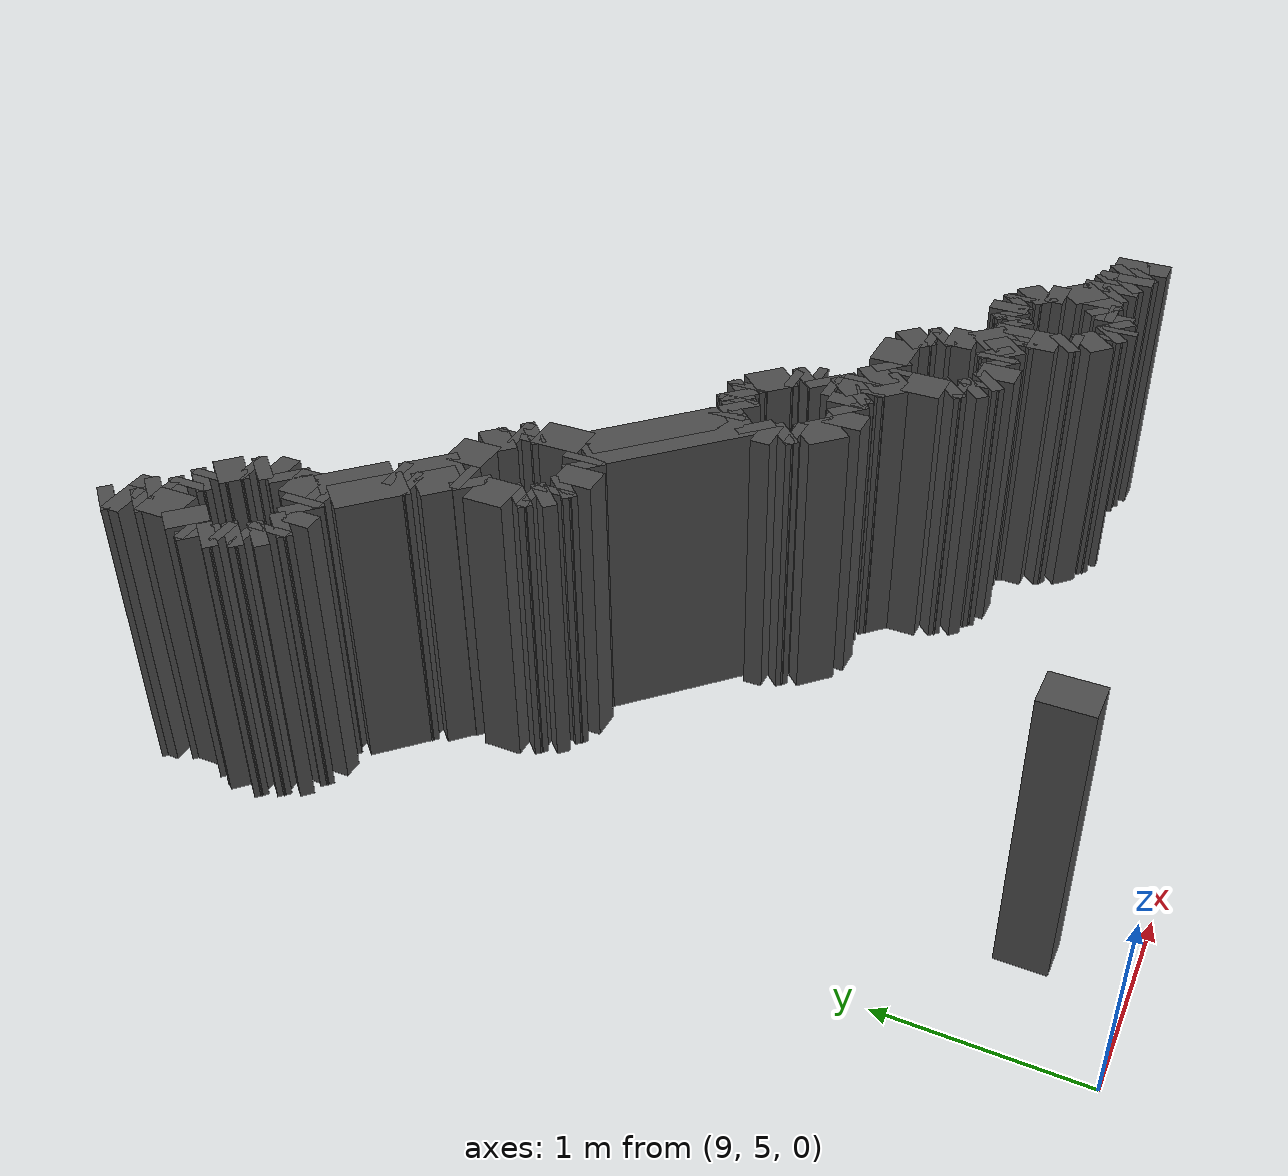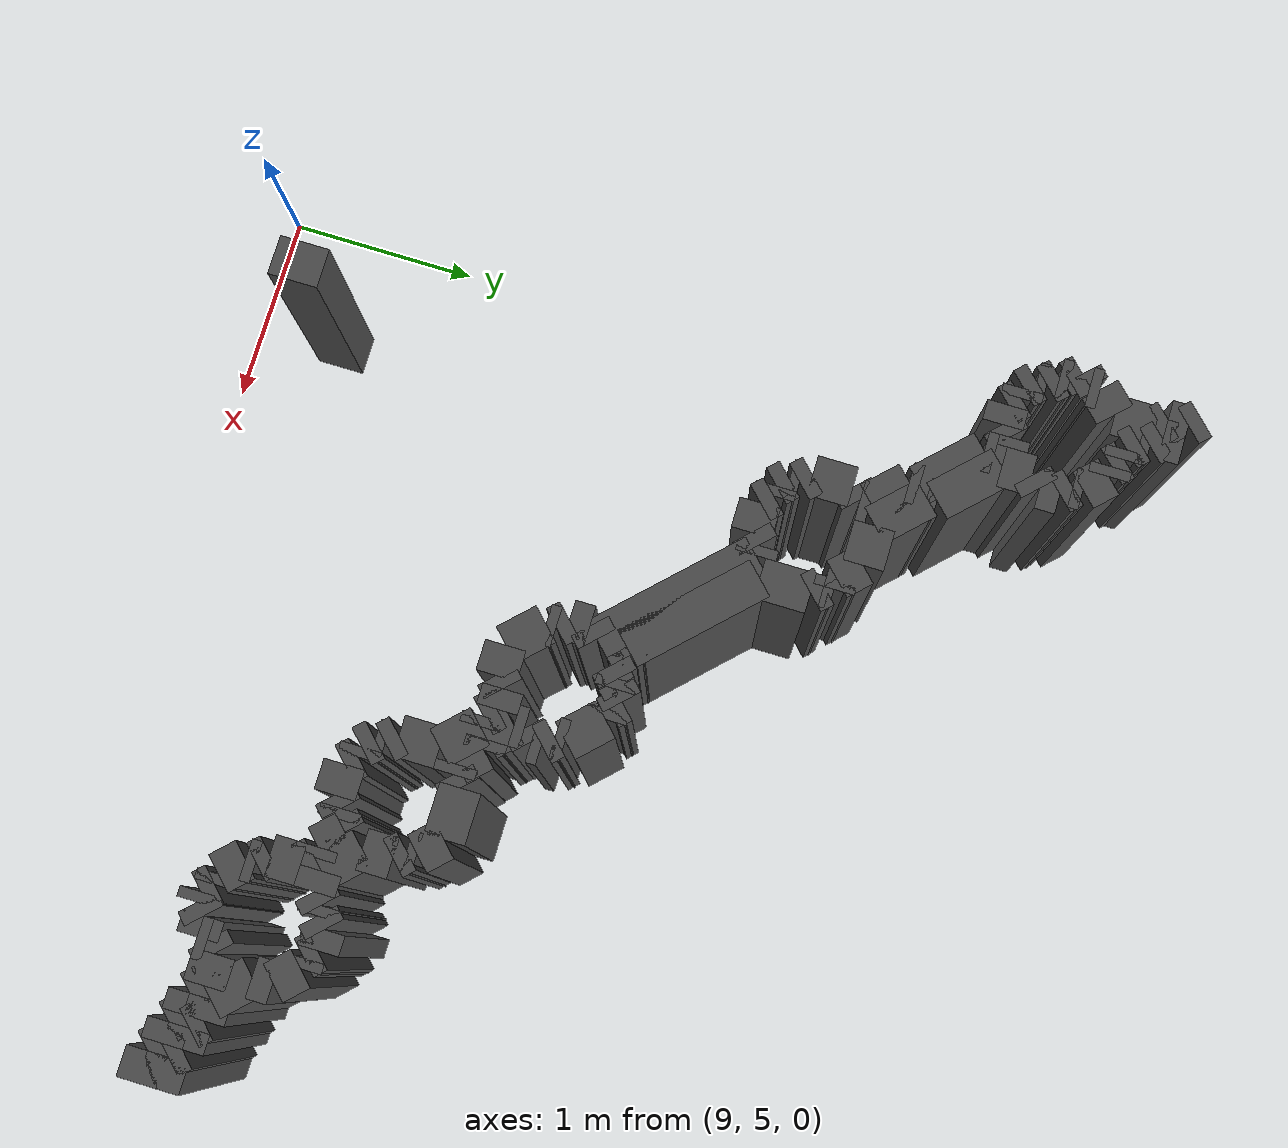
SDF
<sdf version="1.9">
 <model name="generated_walls">
  <static>true</static>
  <link name="wall_158_0">
   <pose>9.600 5.475 0.75 0 0 1.571</pose>
   <collision name="collision"><geometry><box><size>0.250 0.2 1.5</size></box></geometry></collision>
   <visual name="visual">
    <geometry><box><size>0.250 0.2 1.5</size></box></geometry>
    <material><ambient>0.3 0.3 0.3 1</ambient></material>
   </visual>
  </link>
  <link name="wall_161_52">
   <pose>13.425 6.000 0.75 0 0 3.142</pose>
   <collision name="collision"><geometry><box><size>0.150 0.2 1.5</size></box></geometry></collision>
   <visual name="visual">
    <geometry><box><size>0.150 0.2 1.5</size></box></geometry>
    <material><ambient>0.3 0.3 0.3 1</ambient></material>
   </visual>
  </link>
  <link name="wall_161_53">
   <pose>13.325 6.025 0.75 0 0 2.356</pose>
   <collision name="collision"><geometry><box><size>0.071 0.2 1.5</size></box></geometry></collision>
   <visual name="visual">
    <geometry><box><size>0.071 0.2 1.5</size></box></geometry>
    <material><ambient>0.3 0.3 0.3 1</ambient></material>
   </visual>
  </link>
  <link name="wall_161_54">
   <pose>13.250 6.050 0.75 0 0 3.142</pose>
   <collision name="collision"><geometry><box><size>0.100 0.2 1.5</size></box></geometry></collision>
   <visual name="visual">
    <geometry><box><size>0.100 0.2 1.5</size></box></geometry>
    <material><ambient>0.3 0.3 0.3 1</ambient></material>
   </visual>
  </link>
  <link name="wall_161_55">
   <pose>13.175 6.075 0.75 0 0 2.356</pose>
   <collision name="collision"><geometry><box><size>0.071 0.2 1.5</size></box></geometry></collision>
   <visual name="visual">
    <geometry><box><size>0.071 0.2 1.5</size></box></geometry>
    <material><ambient>0.3 0.3 0.3 1</ambient></material>
   </visual>
  </link>
  <link name="wall_161_56">
   <pose>13.100 6.100 0.75 0 0 3.142</pose>
   <collision name="collision"><geometry><box><size>0.100 0.2 1.5</size></box></geometry></collision>
   <visual name="visual">
    <geometry><box><size>0.100 0.2 1.5</size></box></geometry>
    <material><ambient>0.3 0.3 0.3 1</ambient></material>
   </visual>
  </link>
  <link name="wall_161_57">
   <pose>13.025 6.125 0.75 0 0 2.356</pose>
   <collision name="collision"><geometry><box><size>0.071 0.2 1.5</size></box></geometry></collision>
   <visual name="visual">
    <geometry><box><size>0.071 0.2 1.5</size></box></geometry>
    <material><ambient>0.3 0.3 0.3 1</ambient></material>
   </visual>
  </link>
  <link name="wall_161_58">
   <pose>12.925 6.150 0.75 0 0 3.142</pose>
   <collision name="collision"><geometry><box><size>0.150 0.2 1.5</size></box></geometry></collision>
   <visual name="visual">
    <geometry><box><size>0.150 0.2 1.5</size></box></geometry>
    <material><ambient>0.3 0.3 0.3 1</ambient></material>
   </visual>
  </link>
  <link name="wall_161_59">
   <pose>12.825 6.125 0.75 0 0 -2.356</pose>
   <collision name="collision"><geometry><box><size>0.071 0.2 1.5</size></box></geometry></collision>
   <visual name="visual">
    <geometry><box><size>0.071 0.2 1.5</size></box></geometry>
    <material><ambient>0.3 0.3 0.3 1</ambient></material>
   </visual>
  </link>
  <link name="wall_161_60">
   <pose>12.800 6.075 0.75 0 0 -1.571</pose>
   <collision name="collision"><geometry><box><size>0.050 0.2 1.5</size></box></geometry></collision>
   <visual name="visual">
    <geometry><box><size>0.050 0.2 1.5</size></box></geometry>
    <material><ambient>0.3 0.3 0.3 1</ambient></material>
   </visual>
  </link>
  <link name="wall_161_61">
   <pose>12.750 6.050 0.75 0 0 3.142</pose>
   <collision name="collision"><geometry><box><size>0.100 0.2 1.5</size></box></geometry></collision>
   <visual name="visual">
    <geometry><box><size>0.100 0.2 1.5</size></box></geometry>
    <material><ambient>0.3 0.3 0.3 1</ambient></material>
   </visual>
  </link>
  <link name="wall_161_62">
   <pose>12.675 6.025 0.75 0 0 -2.356</pose>
   <collision name="collision"><geometry><box><size>0.071 0.2 1.5</size></box></geometry></collision>
   <visual name="visual">
    <geometry><box><size>0.071 0.2 1.5</size></box></geometry>
    <material><ambient>0.3 0.3 0.3 1</ambient></material>
   </visual>
  </link>
  <link name="wall_161_63">
   <pose>12.625 6.000 0.75 0 0 3.142</pose>
   <collision name="collision"><geometry><box><size>0.050 0.2 1.5</size></box></geometry></collision>
   <visual name="visual">
    <geometry><box><size>0.050 0.2 1.5</size></box></geometry>
    <material><ambient>0.3 0.3 0.3 1</ambient></material>
   </visual>
  </link>
  <link name="wall_161_64">
   <pose>12.575 6.025 0.75 0 0 2.356</pose>
   <collision name="collision"><geometry><box><size>0.071 0.2 1.5</size></box></geometry></collision>
   <visual name="visual">
    <geometry><box><size>0.071 0.2 1.5</size></box></geometry>
    <material><ambient>0.3 0.3 0.3 1</ambient></material>
   </visual>
  </link>
  <link name="wall_161_65">
   <pose>12.525 6.050 0.75 0 0 3.142</pose>
   <collision name="collision"><geometry><box><size>0.050 0.2 1.5</size></box></geometry></collision>
   <visual name="visual">
    <geometry><box><size>0.050 0.2 1.5</size></box></geometry>
    <material><ambient>0.3 0.3 0.3 1</ambient></material>
   </visual>
  </link>
  <link name="wall_161_66">
   <pose>12.450 6.100 0.75 0 0 2.356</pose>
   <collision name="collision"><geometry><box><size>0.141 0.2 1.5</size></box></geometry></collision>
   <visual name="visual">
    <geometry><box><size>0.141 0.2 1.5</size></box></geometry>
    <material><ambient>0.3 0.3 0.3 1</ambient></material>
   </visual>
  </link>
  <link name="wall_161_67">
   <pose>12.400 6.175 0.75 0 0 1.571</pose>
   <collision name="collision"><geometry><box><size>0.050 0.2 1.5</size></box></geometry></collision>
   <visual name="visual">
    <geometry><box><size>0.050 0.2 1.5</size></box></geometry>
    <material><ambient>0.3 0.3 0.3 1</ambient></material>
   </visual>
  </link>
  <link name="wall_161_68">
   <pose>12.375 6.225 0.75 0 0 2.356</pose>
   <collision name="collision"><geometry><box><size>0.071 0.2 1.5</size></box></geometry></collision>
   <visual name="visual">
    <geometry><box><size>0.071 0.2 1.5</size></box></geometry>
    <material><ambient>0.3 0.3 0.3 1</ambient></material>
   </visual>
  </link>
  <link name="wall_161_69">
   <pose>12.350 6.325 0.75 0 0 1.571</pose>
   <collision name="collision"><geometry><box><size>0.150 0.2 1.5</size></box></geometry></collision>
   <visual name="visual">
    <geometry><box><size>0.150 0.2 1.5</size></box></geometry>
    <material><ambient>0.3 0.3 0.3 1</ambient></material>
   </visual>
  </link>
  <link name="wall_161_70">
   <pose>12.325 6.425 0.75 0 0 2.356</pose>
   <collision name="collision"><geometry><box><size>0.071 0.2 1.5</size></box></geometry></collision>
   <visual name="visual">
    <geometry><box><size>0.071 0.2 1.5</size></box></geometry>
    <material><ambient>0.3 0.3 0.3 1</ambient></material>
   </visual>
  </link>
  <link name="wall_161_71">
   <pose>12.275 6.450 0.75 0 0 3.142</pose>
   <collision name="collision"><geometry><box><size>0.050 0.2 1.5</size></box></geometry></collision>
   <visual name="visual">
    <geometry><box><size>0.050 0.2 1.5</size></box></geometry>
    <material><ambient>0.3 0.3 0.3 1</ambient></material>
   </visual>
  </link>
  <link name="wall_161_72">
   <pose>12.200 6.500 0.75 0 0 2.356</pose>
   <collision name="collision"><geometry><box><size>0.141 0.2 1.5</size></box></geometry></collision>
   <visual name="visual">
    <geometry><box><size>0.141 0.2 1.5</size></box></geometry>
    <material><ambient>0.3 0.3 0.3 1</ambient></material>
   </visual>
  </link>
  <link name="wall_161_73">
   <pose>12.125 6.525 0.75 0 0 -2.356</pose>
   <collision name="collision"><geometry><box><size>0.071 0.2 1.5</size></box></geometry></collision>
   <visual name="visual">
    <geometry><box><size>0.071 0.2 1.5</size></box></geometry>
    <material><ambient>0.3 0.3 0.3 1</ambient></material>
   </visual>
  </link>
  <link name="wall_161_74">
   <pose>12.075 6.500 0.75 0 0 3.142</pose>
   <collision name="collision"><geometry><box><size>0.050 0.2 1.5</size></box></geometry></collision>
   <visual name="visual">
    <geometry><box><size>0.050 0.2 1.5</size></box></geometry>
    <material><ambient>0.3 0.3 0.3 1</ambient></material>
   </visual>
  </link>
  <link name="wall_161_75">
   <pose>12.025 6.475 0.75 0 0 -2.356</pose>
   <collision name="collision"><geometry><box><size>0.071 0.2 1.5</size></box></geometry></collision>
   <visual name="visual">
    <geometry><box><size>0.071 0.2 1.5</size></box></geometry>
    <material><ambient>0.3 0.3 0.3 1</ambient></material>
   </visual>
  </link>
  <link name="wall_161_76">
   <pose>11.925 6.450 0.75 0 0 3.142</pose>
   <collision name="collision"><geometry><box><size>0.150 0.2 1.5</size></box></geometry></collision>
   <visual name="visual">
    <geometry><box><size>0.150 0.2 1.5</size></box></geometry>
    <material><ambient>0.3 0.3 0.3 1</ambient></material>
   </visual>
  </link>
  <link name="wall_161_77">
   <pose>11.825 6.475 0.75 0 0 2.356</pose>
   <collision name="collision"><geometry><box><size>0.071 0.2 1.5</size></box></geometry></collision>
   <visual name="visual">
    <geometry><box><size>0.071 0.2 1.5</size></box></geometry>
    <material><ambient>0.3 0.3 0.3 1</ambient></material>
   </visual>
  </link>
  <link name="wall_161_78">
   <pose>11.775 6.500 0.75 0 0 3.142</pose>
   <collision name="collision"><geometry><box><size>0.050 0.2 1.5</size></box></geometry></collision>
   <visual name="visual">
    <geometry><box><size>0.050 0.2 1.5</size></box></geometry>
    <material><ambient>0.3 0.3 0.3 1</ambient></material>
   </visual>
  </link>
  <link name="wall_161_79">
   <pose>11.725 6.525 0.75 0 0 2.356</pose>
   <collision name="collision"><geometry><box><size>0.071 0.2 1.5</size></box></geometry></collision>
   <visual name="visual">
    <geometry><box><size>0.071 0.2 1.5</size></box></geometry>
    <material><ambient>0.3 0.3 0.3 1</ambient></material>
   </visual>
  </link>
  <link name="wall_161_80">
   <pose>11.700 6.575 0.75 0 0 1.571</pose>
   <collision name="collision"><geometry><box><size>0.050 0.2 1.5</size></box></geometry></collision>
   <visual name="visual">
    <geometry><box><size>0.050 0.2 1.5</size></box></geometry>
    <material><ambient>0.3 0.3 0.3 1</ambient></material>
   </visual>
  </link>
  <link name="wall_161_81">
   <pose>11.675 6.625 0.75 0 0 2.356</pose>
   <collision name="collision"><geometry><box><size>0.071 0.2 1.5</size></box></geometry></collision>
   <visual name="visual">
    <geometry><box><size>0.071 0.2 1.5</size></box></geometry>
    <material><ambient>0.3 0.3 0.3 1</ambient></material>
   </visual>
  </link>
  <link name="wall_161_82">
   <pose>11.650 6.750 0.75 0 0 1.571</pose>
   <collision name="collision"><geometry><box><size>0.200 0.2 1.5</size></box></geometry></collision>
   <visual name="visual">
    <geometry><box><size>0.200 0.2 1.5</size></box></geometry>
    <material><ambient>0.3 0.3 0.3 1</ambient></material>
   </visual>
  </link>
  <link name="wall_161_83">
   <pose>11.575 6.925 0.75 0 0 2.356</pose>
   <collision name="collision"><geometry><box><size>0.212 0.2 1.5</size></box></geometry></collision>
   <visual name="visual">
    <geometry><box><size>0.212 0.2 1.5</size></box></geometry>
    <material><ambient>0.3 0.3 0.3 1</ambient></material>
   </visual>
  </link>
  <link name="wall_161_84">
   <pose>11.475 7.000 0.75 0 0 3.142</pose>
   <collision name="collision"><geometry><box><size>0.050 0.2 1.5</size></box></geometry></collision>
   <visual name="visual">
    <geometry><box><size>0.050 0.2 1.5</size></box></geometry>
    <material><ambient>0.3 0.3 0.3 1</ambient></material>
   </visual>
  </link>
  <link name="wall_161_85">
   <pose>11.425 7.025 0.75 0 0 2.356</pose>
   <collision name="collision"><geometry><box><size>0.071 0.2 1.5</size></box></geometry></collision>
   <visual name="visual">
    <geometry><box><size>0.071 0.2 1.5</size></box></geometry>
    <material><ambient>0.3 0.3 0.3 1</ambient></material>
   </visual>
  </link>
  <link name="wall_161_86">
   <pose>11.350 7.050 0.75 0 0 3.142</pose>
   <collision name="collision"><geometry><box><size>0.100 0.2 1.5</size></box></geometry></collision>
   <visual name="visual">
    <geometry><box><size>0.100 0.2 1.5</size></box></geometry>
    <material><ambient>0.3 0.3 0.3 1</ambient></material>
   </visual>
  </link>
  <link name="wall_161_87">
   <pose>11.275 7.025 0.75 0 0 -2.356</pose>
   <collision name="collision"><geometry><box><size>0.071 0.2 1.5</size></box></geometry></collision>
   <visual name="visual">
    <geometry><box><size>0.071 0.2 1.5</size></box></geometry>
    <material><ambient>0.3 0.3 0.3 1</ambient></material>
   </visual>
  </link>
  <link name="wall_161_88">
   <pose>11.175 7.000 0.75 0 0 3.142</pose>
   <collision name="collision"><geometry><box><size>0.150 0.2 1.5</size></box></geometry></collision>
   <visual name="visual">
    <geometry><box><size>0.150 0.2 1.5</size></box></geometry>
    <material><ambient>0.3 0.3 0.3 1</ambient></material>
   </visual>
  </link>
  <link name="wall_161_89">
   <pose>11.025 7.075 0.75 0 0 2.356</pose>
   <collision name="collision"><geometry><box><size>0.212 0.2 1.5</size></box></geometry></collision>
   <visual name="visual">
    <geometry><box><size>0.212 0.2 1.5</size></box></geometry>
    <material><ambient>0.3 0.3 0.3 1</ambient></material>
   </visual>
  </link>
  <link name="wall_161_90">
   <pose>10.950 7.175 0.75 0 0 1.571</pose>
   <collision name="collision"><geometry><box><size>0.050 0.2 1.5</size></box></geometry></collision>
   <visual name="visual">
    <geometry><box><size>0.050 0.2 1.5</size></box></geometry>
    <material><ambient>0.3 0.3 0.3 1</ambient></material>
   </visual>
  </link>
  <link name="wall_161_91">
   <pose>10.925 7.225 0.75 0 0 2.356</pose>
   <collision name="collision"><geometry><box><size>0.071 0.2 1.5</size></box></geometry></collision>
   <visual name="visual">
    <geometry><box><size>0.071 0.2 1.5</size></box></geometry>
    <material><ambient>0.3 0.3 0.3 1</ambient></material>
   </visual>
  </link>
  <link name="wall_161_92">
   <pose>10.900 7.300 0.75 0 0 1.571</pose>
   <collision name="collision"><geometry><box><size>0.100 0.2 1.5</size></box></geometry></collision>
   <visual name="visual">
    <geometry><box><size>0.100 0.2 1.5</size></box></geometry>
    <material><ambient>0.3 0.3 0.3 1</ambient></material>
   </visual>
  </link>
  <link name="wall_161_93">
   <pose>10.925 7.375 0.75 0 0 0.785</pose>
   <collision name="collision"><geometry><box><size>0.071 0.2 1.5</size></box></geometry></collision>
   <visual name="visual">
    <geometry><box><size>0.071 0.2 1.5</size></box></geometry>
    <material><ambient>0.3 0.3 0.3 1</ambient></material>
   </visual>
  </link>
  <link name="wall_161_94">
   <pose>10.650 7.700 0.75 0 0 2.356</pose>
   <collision name="collision"><geometry><box><size>0.849 0.2 1.5</size></box></geometry></collision>
   <visual name="visual">
    <geometry><box><size>0.849 0.2 1.5</size></box></geometry>
    <material><ambient>0.3 0.3 0.3 1</ambient></material>
   </visual>
  </link>
  <link name="wall_161_95">
   <pose>10.325 8.000 0.75 0 0 3.142</pose>
   <collision name="collision"><geometry><box><size>0.050 0.2 1.5</size></box></geometry></collision>
   <visual name="visual">
    <geometry><box><size>0.050 0.2 1.5</size></box></geometry>
    <material><ambient>0.3 0.3 0.3 1</ambient></material>
   </visual>
  </link>
  <link name="wall_161_96">
   <pose>10.275 7.975 0.75 0 0 -2.356</pose>
   <collision name="collision"><geometry><box><size>0.071 0.2 1.5</size></box></geometry></collision>
   <visual name="visual">
    <geometry><box><size>0.071 0.2 1.5</size></box></geometry>
    <material><ambient>0.3 0.3 0.3 1</ambient></material>
   </visual>
  </link>
  <link name="wall_161_97">
   <pose>10.175 7.950 0.75 0 0 3.142</pose>
   <collision name="collision"><geometry><box><size>0.150 0.2 1.5</size></box></geometry></collision>
   <visual name="visual">
    <geometry><box><size>0.150 0.2 1.5</size></box></geometry>
    <material><ambient>0.3 0.3 0.3 1</ambient></material>
   </visual>
  </link>
  <link name="wall_161_98">
   <pose>10.075 7.975 0.75 0 0 2.356</pose>
   <collision name="collision"><geometry><box><size>0.071 0.2 1.5</size></box></geometry></collision>
   <visual name="visual">
    <geometry><box><size>0.071 0.2 1.5</size></box></geometry>
    <material><ambient>0.3 0.3 0.3 1</ambient></material>
   </visual>
  </link>
  <link name="wall_161_99">
   <pose>10.025 8.000 0.75 0 0 3.142</pose>
   <collision name="collision"><geometry><box><size>0.050 0.2 1.5</size></box></geometry></collision>
   <visual name="visual">
    <geometry><box><size>0.050 0.2 1.5</size></box></geometry>
    <material><ambient>0.3 0.3 0.3 1</ambient></material>
   </visual>
  </link>
  <link name="wall_161_100">
   <pose>9.975 8.025 0.75 0 0 2.356</pose>
   <collision name="collision"><geometry><box><size>0.071 0.2 1.5</size></box></geometry></collision>
   <visual name="visual">
    <geometry><box><size>0.071 0.2 1.5</size></box></geometry>
    <material><ambient>0.3 0.3 0.3 1</ambient></material>
   </visual>
  </link>
  <link name="wall_161_101">
   <pose>9.950 8.075 0.75 0 0 1.571</pose>
   <collision name="collision"><geometry><box><size>0.050 0.2 1.5</size></box></geometry></collision>
   <visual name="visual">
    <geometry><box><size>0.050 0.2 1.5</size></box></geometry>
    <material><ambient>0.3 0.3 0.3 1</ambient></material>
   </visual>
  </link>
  <link name="wall_161_102">
   <pose>9.925 8.125 0.75 0 0 2.356</pose>
   <collision name="collision"><geometry><box><size>0.071 0.2 1.5</size></box></geometry></collision>
   <visual name="visual">
    <geometry><box><size>0.071 0.2 1.5</size></box></geometry>
    <material><ambient>0.3 0.3 0.3 1</ambient></material>
   </visual>
  </link>
  <link name="wall_161_103">
   <pose>9.900 8.250 0.75 0 0 1.571</pose>
   <collision name="collision"><geometry><box><size>0.200 0.2 1.5</size></box></geometry></collision>
   <visual name="visual">
    <geometry><box><size>0.200 0.2 1.5</size></box></geometry>
    <material><ambient>0.3 0.3 0.3 1</ambient></material>
   </visual>
  </link>
  <link name="wall_161_104">
   <pose>9.925 8.375 0.75 0 0 0.785</pose>
   <collision name="collision"><geometry><box><size>0.071 0.2 1.5</size></box></geometry></collision>
   <visual name="visual">
    <geometry><box><size>0.071 0.2 1.5</size></box></geometry>
    <material><ambient>0.3 0.3 0.3 1</ambient></material>
   </visual>
  </link>
  <link name="wall_161_105">
   <pose>9.950 8.425 0.75 0 0 1.571</pose>
   <collision name="collision"><geometry><box><size>0.050 0.2 1.5</size></box></geometry></collision>
   <visual name="visual">
    <geometry><box><size>0.050 0.2 1.5</size></box></geometry>
    <material><ambient>0.3 0.3 0.3 1</ambient></material>
   </visual>
  </link>
  <link name="wall_161_106">
   <pose>9.875 8.525 0.75 0 0 2.356</pose>
   <collision name="collision"><geometry><box><size>0.212 0.2 1.5</size></box></geometry></collision>
   <visual name="visual">
    <geometry><box><size>0.212 0.2 1.5</size></box></geometry>
    <material><ambient>0.3 0.3 0.3 1</ambient></material>
   </visual>
  </link>
  <link name="wall_161_107">
   <pose>9.800 8.625 0.75 0 0 1.571</pose>
   <collision name="collision"><geometry><box><size>0.050 0.2 1.5</size></box></geometry></collision>
   <visual name="visual">
    <geometry><box><size>0.050 0.2 1.5</size></box></geometry>
    <material><ambient>0.3 0.3 0.3 1</ambient></material>
   </visual>
  </link>
  <link name="wall_161_108">
   <pose>9.675 8.775 0.75 0 0 2.356</pose>
   <collision name="collision"><geometry><box><size>0.354 0.2 1.5</size></box></geometry></collision>
   <visual name="visual">
    <geometry><box><size>0.354 0.2 1.5</size></box></geometry>
    <material><ambient>0.3 0.3 0.3 1</ambient></material>
   </visual>
  </link>
  <link name="wall_161_109">
   <pose>9.550 8.925 0.75 0 0 1.571</pose>
   <collision name="collision"><geometry><box><size>0.050 0.2 1.5</size></box></geometry></collision>
   <visual name="visual">
    <geometry><box><size>0.050 0.2 1.5</size></box></geometry>
    <material><ambient>0.3 0.3 0.3 1</ambient></material>
   </visual>
  </link>
  <link name="wall_161_110">
   <pose>9.525 8.975 0.75 0 0 2.356</pose>
   <collision name="collision"><geometry><box><size>0.071 0.2 1.5</size></box></geometry></collision>
   <visual name="visual">
    <geometry><box><size>0.071 0.2 1.5</size></box></geometry>
    <material><ambient>0.3 0.3 0.3 1</ambient></material>
   </visual>
  </link>
  <link name="wall_161_111">
   <pose>9.475 9.000 0.75 0 0 3.142</pose>
   <collision name="collision"><geometry><box><size>0.050 0.2 1.5</size></box></geometry></collision>
   <visual name="visual">
    <geometry><box><size>0.050 0.2 1.5</size></box></geometry>
    <material><ambient>0.3 0.3 0.3 1</ambient></material>
   </visual>
  </link>
  <link name="wall_161_112">
   <pose>9.425 8.975 0.75 0 0 -2.356</pose>
   <collision name="collision"><geometry><box><size>0.071 0.2 1.5</size></box></geometry></collision>
   <visual name="visual">
    <geometry><box><size>0.071 0.2 1.5</size></box></geometry>
    <material><ambient>0.3 0.3 0.3 1</ambient></material>
   </visual>
  </link>
  <link name="wall_161_113">
   <pose>9.350 8.950 0.75 0 0 3.142</pose>
   <collision name="collision"><geometry><box><size>0.100 0.2 1.5</size></box></geometry></collision>
   <visual name="visual">
    <geometry><box><size>0.100 0.2 1.5</size></box></geometry>
    <material><ambient>0.3 0.3 0.3 1</ambient></material>
   </visual>
  </link>
  <link name="wall_161_114">
   <pose>9.275 8.975 0.75 0 0 2.356</pose>
   <collision name="collision"><geometry><box><size>0.071 0.2 1.5</size></box></geometry></collision>
   <visual name="visual">
    <geometry><box><size>0.071 0.2 1.5</size></box></geometry>
    <material><ambient>0.3 0.3 0.3 1</ambient></material>
   </visual>
  </link>
  <link name="wall_161_115">
   <pose>9.225 9.000 0.75 0 0 3.142</pose>
   <collision name="collision"><geometry><box><size>0.050 0.2 1.5</size></box></geometry></collision>
   <visual name="visual">
    <geometry><box><size>0.050 0.2 1.5</size></box></geometry>
    <material><ambient>0.3 0.3 0.3 1</ambient></material>
   </visual>
  </link>
  <link name="wall_161_116">
   <pose>9.175 9.025 0.75 0 0 2.356</pose>
   <collision name="collision"><geometry><box><size>0.071 0.2 1.5</size></box></geometry></collision>
   <visual name="visual">
    <geometry><box><size>0.071 0.2 1.5</size></box></geometry>
    <material><ambient>0.3 0.3 0.3 1</ambient></material>
   </visual>
  </link>
  <link name="wall_161_117">
   <pose>9.150 9.075 0.75 0 0 1.571</pose>
   <collision name="collision"><geometry><box><size>0.050 0.2 1.5</size></box></geometry></collision>
   <visual name="visual">
    <geometry><box><size>0.050 0.2 1.5</size></box></geometry>
    <material><ambient>0.3 0.3 0.3 1</ambient></material>
   </visual>
  </link>
  <link name="wall_161_118">
   <pose>9.125 9.125 0.75 0 0 2.356</pose>
   <collision name="collision"><geometry><box><size>0.071 0.2 1.5</size></box></geometry></collision>
   <visual name="visual">
    <geometry><box><size>0.071 0.2 1.5</size></box></geometry>
    <material><ambient>0.3 0.3 0.3 1</ambient></material>
   </visual>
  </link>
  <link name="wall_161_119">
   <pose>9.100 9.175 0.75 0 0 1.571</pose>
   <collision name="collision"><geometry><box><size>0.050 0.2 1.5</size></box></geometry></collision>
   <visual name="visual">
    <geometry><box><size>0.050 0.2 1.5</size></box></geometry>
    <material><ambient>0.3 0.3 0.3 1</ambient></material>
   </visual>
  </link>
  <link name="wall_161_120">
   <pose>9.075 9.225 0.75 0 0 2.356</pose>
   <collision name="collision"><geometry><box><size>0.071 0.2 1.5</size></box></geometry></collision>
   <visual name="visual">
    <geometry><box><size>0.071 0.2 1.5</size></box></geometry>
    <material><ambient>0.3 0.3 0.3 1</ambient></material>
   </visual>
  </link>
  <link name="wall_161_121">
   <pose>9.075 9.275 0.75 0 0 0.785</pose>
   <collision name="collision"><geometry><box><size>0.071 0.2 1.5</size></box></geometry></collision>
   <visual name="visual">
    <geometry><box><size>0.071 0.2 1.5</size></box></geometry>
    <material><ambient>0.3 0.3 0.3 1</ambient></material>
   </visual>
  </link>
  <link name="wall_161_122">
   <pose>9.100 9.325 0.75 0 0 1.571</pose>
   <collision name="collision"><geometry><box><size>0.050 0.2 1.5</size></box></geometry></collision>
   <visual name="visual">
    <geometry><box><size>0.050 0.2 1.5</size></box></geometry>
    <material><ambient>0.3 0.3 0.3 1</ambient></material>
   </visual>
  </link>
  <link name="wall_161_123">
   <pose>9.150 9.400 0.75 0 0 0.785</pose>
   <collision name="collision"><geometry><box><size>0.141 0.2 1.5</size></box></geometry></collision>
   <visual name="visual">
    <geometry><box><size>0.141 0.2 1.5</size></box></geometry>
    <material><ambient>0.3 0.3 0.3 1</ambient></material>
   </visual>
  </link>
  <link name="wall_161_124">
   <pose>9.200 9.550 0.75 0 0 1.571</pose>
   <collision name="collision"><geometry><box><size>0.200 0.2 1.5</size></box></geometry></collision>
   <visual name="visual">
    <geometry><box><size>0.200 0.2 1.5</size></box></geometry>
    <material><ambient>0.3 0.3 0.3 1</ambient></material>
   </visual>
  </link>
  <link name="wall_161_125">
   <pose>9.175 9.675 0.75 0 0 2.356</pose>
   <collision name="collision"><geometry><box><size>0.071 0.2 1.5</size></box></geometry></collision>
   <visual name="visual">
    <geometry><box><size>0.071 0.2 1.5</size></box></geometry>
    <material><ambient>0.3 0.3 0.3 1</ambient></material>
   </visual>
  </link>
  <link name="wall_161_126">
   <pose>9.150 9.750 0.75 0 0 1.571</pose>
   <collision name="collision"><geometry><box><size>0.100 0.2 1.5</size></box></geometry></collision>
   <visual name="visual">
    <geometry><box><size>0.100 0.2 1.5</size></box></geometry>
    <material><ambient>0.3 0.3 0.3 1</ambient></material>
   </visual>
  </link>
  <link name="wall_161_127">
   <pose>9.125 9.825 0.75 0 0 2.356</pose>
   <collision name="collision"><geometry><box><size>0.071 0.2 1.5</size></box></geometry></collision>
   <visual name="visual">
    <geometry><box><size>0.071 0.2 1.5</size></box></geometry>
    <material><ambient>0.3 0.3 0.3 1</ambient></material>
   </visual>
  </link>
  <link name="wall_161_1047">
   <pose>9.250 9.750 0.75 0 0 -1.571</pose>
   <collision name="collision"><geometry><box><size>0.100 0.2 1.5</size></box></geometry></collision>
   <visual name="visual">
    <geometry><box><size>0.100 0.2 1.5</size></box></geometry>
    <material><ambient>0.3 0.3 0.3 1</ambient></material>
   </visual>
  </link>
  <link name="wall_161_1048">
   <pose>9.275 9.675 0.75 0 0 -0.785</pose>
   <collision name="collision"><geometry><box><size>0.071 0.2 1.5</size></box></geometry></collision>
   <visual name="visual">
    <geometry><box><size>0.071 0.2 1.5</size></box></geometry>
    <material><ambient>0.3 0.3 0.3 1</ambient></material>
   </visual>
  </link>
  <link name="wall_161_1049">
   <pose>9.300 9.625 0.75 0 0 -1.571</pose>
   <collision name="collision"><geometry><box><size>0.050 0.2 1.5</size></box></geometry></collision>
   <visual name="visual">
    <geometry><box><size>0.050 0.2 1.5</size></box></geometry>
    <material><ambient>0.3 0.3 0.3 1</ambient></material>
   </visual>
  </link>
  <link name="wall_161_1050">
   <pose>9.325 9.575 0.75 0 0 -0.785</pose>
   <collision name="collision"><geometry><box><size>0.071 0.2 1.5</size></box></geometry></collision>
   <visual name="visual">
    <geometry><box><size>0.071 0.2 1.5</size></box></geometry>
    <material><ambient>0.3 0.3 0.3 1</ambient></material>
   </visual>
  </link>
  <link name="wall_161_1051">
   <pose>9.375 9.550 0.75 0 0 0.000</pose>
   <collision name="collision"><geometry><box><size>0.050 0.2 1.5</size></box></geometry></collision>
   <visual name="visual">
    <geometry><box><size>0.050 0.2 1.5</size></box></geometry>
    <material><ambient>0.3 0.3 0.3 1</ambient></material>
   </visual>
  </link>
  <link name="wall_161_1052">
   <pose>9.425 9.525 0.75 0 0 -0.785</pose>
   <collision name="collision"><geometry><box><size>0.071 0.2 1.5</size></box></geometry></collision>
   <visual name="visual">
    <geometry><box><size>0.071 0.2 1.5</size></box></geometry>
    <material><ambient>0.3 0.3 0.3 1</ambient></material>
   </visual>
  </link>
  <link name="wall_161_1053">
   <pose>9.475 9.500 0.75 0 0 0.000</pose>
   <collision name="collision"><geometry><box><size>0.050 0.2 1.5</size></box></geometry></collision>
   <visual name="visual">
    <geometry><box><size>0.050 0.2 1.5</size></box></geometry>
    <material><ambient>0.3 0.3 0.3 1</ambient></material>
   </visual>
  </link>
  <link name="wall_161_1054">
   <pose>9.550 9.450 0.75 0 0 -0.785</pose>
   <collision name="collision"><geometry><box><size>0.141 0.2 1.5</size></box></geometry></collision>
   <visual name="visual">
    <geometry><box><size>0.141 0.2 1.5</size></box></geometry>
    <material><ambient>0.3 0.3 0.3 1</ambient></material>
   </visual>
  </link>
  <link name="wall_161_1055">
   <pose>9.600 9.375 0.75 0 0 -1.571</pose>
   <collision name="collision"><geometry><box><size>0.050 0.2 1.5</size></box></geometry></collision>
   <visual name="visual">
    <geometry><box><size>0.050 0.2 1.5</size></box></geometry>
    <material><ambient>0.3 0.3 0.3 1</ambient></material>
   </visual>
  </link>
  <link name="wall_161_1056">
   <pose>9.625 9.325 0.75 0 0 -0.785</pose>
   <collision name="collision"><geometry><box><size>0.071 0.2 1.5</size></box></geometry></collision>
   <visual name="visual">
    <geometry><box><size>0.071 0.2 1.5</size></box></geometry>
    <material><ambient>0.3 0.3 0.3 1</ambient></material>
   </visual>
  </link>
  <link name="wall_161_1057">
   <pose>9.650 9.250 0.75 0 0 -1.571</pose>
   <collision name="collision"><geometry><box><size>0.100 0.2 1.5</size></box></geometry></collision>
   <visual name="visual">
    <geometry><box><size>0.100 0.2 1.5</size></box></geometry>
    <material><ambient>0.3 0.3 0.3 1</ambient></material>
   </visual>
  </link>
  <link name="wall_161_1058">
   <pose>9.625 9.175 0.75 0 0 -2.356</pose>
   <collision name="collision"><geometry><box><size>0.071 0.2 1.5</size></box></geometry></collision>
   <visual name="visual">
    <geometry><box><size>0.071 0.2 1.5</size></box></geometry>
    <material><ambient>0.3 0.3 0.3 1</ambient></material>
   </visual>
  </link>
  <link name="wall_161_1059">
   <pose>9.600 9.075 0.75 0 0 -1.571</pose>
   <collision name="collision"><geometry><box><size>0.150 0.2 1.5</size></box></geometry></collision>
   <visual name="visual">
    <geometry><box><size>0.150 0.2 1.5</size></box></geometry>
    <material><ambient>0.3 0.3 0.3 1</ambient></material>
   </visual>
  </link>
  <link name="wall_161_1060">
   <pose>9.725 8.875 0.75 0 0 -0.785</pose>
   <collision name="collision"><geometry><box><size>0.354 0.2 1.5</size></box></geometry></collision>
   <visual name="visual">
    <geometry><box><size>0.354 0.2 1.5</size></box></geometry>
    <material><ambient>0.3 0.3 0.3 1</ambient></material>
   </visual>
  </link>
  <link name="wall_161_1061">
   <pose>9.850 8.725 0.75 0 0 -1.571</pose>
   <collision name="collision"><geometry><box><size>0.050 0.2 1.5</size></box></geometry></collision>
   <visual name="visual">
    <geometry><box><size>0.050 0.2 1.5</size></box></geometry>
    <material><ambient>0.3 0.3 0.3 1</ambient></material>
   </visual>
  </link>
  <link name="wall_161_1062">
   <pose>9.950 8.600 0.75 0 0 -0.785</pose>
   <collision name="collision"><geometry><box><size>0.283 0.2 1.5</size></box></geometry></collision>
   <visual name="visual">
    <geometry><box><size>0.283 0.2 1.5</size></box></geometry>
    <material><ambient>0.3 0.3 0.3 1</ambient></material>
   </visual>
  </link>
  <link name="wall_161_1063">
   <pose>10.150 8.500 0.75 0 0 0.000</pose>
   <collision name="collision"><geometry><box><size>0.200 0.2 1.5</size></box></geometry></collision>
   <visual name="visual">
    <geometry><box><size>0.200 0.2 1.5</size></box></geometry>
    <material><ambient>0.3 0.3 0.3 1</ambient></material>
   </visual>
  </link>
  <link name="wall_161_1064">
   <pose>10.300 8.450 0.75 0 0 -0.785</pose>
   <collision name="collision"><geometry><box><size>0.141 0.2 1.5</size></box></geometry></collision>
   <visual name="visual">
    <geometry><box><size>0.141 0.2 1.5</size></box></geometry>
    <material><ambient>0.3 0.3 0.3 1</ambient></material>
   </visual>
  </link>
  <link name="wall_161_1065">
   <pose>10.375 8.400 0.75 0 0 0.000</pose>
   <collision name="collision"><geometry><box><size>0.050 0.2 1.5</size></box></geometry></collision>
   <visual name="visual">
    <geometry><box><size>0.050 0.2 1.5</size></box></geometry>
    <material><ambient>0.3 0.3 0.3 1</ambient></material>
   </visual>
  </link>
  <link name="wall_161_1066">
   <pose>10.400 8.375 0.75 0 0 -1.571</pose>
   <collision name="collision"><geometry><box><size>0.050 0.2 1.5</size></box></geometry></collision>
   <visual name="visual">
    <geometry><box><size>0.050 0.2 1.5</size></box></geometry>
    <material><ambient>0.3 0.3 0.3 1</ambient></material>
   </visual>
  </link>
  <link name="wall_161_1067">
   <pose>10.425 8.325 0.75 0 0 -0.785</pose>
   <collision name="collision"><geometry><box><size>0.071 0.2 1.5</size></box></geometry></collision>
   <visual name="visual">
    <geometry><box><size>0.071 0.2 1.5</size></box></geometry>
    <material><ambient>0.3 0.3 0.3 1</ambient></material>
   </visual>
  </link>
  <link name="wall_161_1068">
   <pose>10.450 8.175 0.75 0 0 -1.571</pose>
   <collision name="collision"><geometry><box><size>0.250 0.2 1.5</size></box></geometry></collision>
   <visual name="visual">
    <geometry><box><size>0.250 0.2 1.5</size></box></geometry>
    <material><ambient>0.3 0.3 0.3 1</ambient></material>
   </visual>
  </link>
  <link name="wall_161_1069">
   <pose>10.700 7.800 0.75 0 0 -0.785</pose>
   <collision name="collision"><geometry><box><size>0.707 0.2 1.5</size></box></geometry></collision>
   <visual name="visual">
    <geometry><box><size>0.707 0.2 1.5</size></box></geometry>
    <material><ambient>0.3 0.3 0.3 1</ambient></material>
   </visual>
  </link>
  <link name="wall_161_1070">
   <pose>10.975 7.550 0.75 0 0 0.000</pose>
   <collision name="collision"><geometry><box><size>0.050 0.2 1.5</size></box></geometry></collision>
   <visual name="visual">
    <geometry><box><size>0.050 0.2 1.5</size></box></geometry>
    <material><ambient>0.3 0.3 0.3 1</ambient></material>
   </visual>
  </link>
  <link name="wall_161_1071">
   <pose>11.025 7.525 0.75 0 0 -0.785</pose>
   <collision name="collision"><geometry><box><size>0.071 0.2 1.5</size></box></geometry></collision>
   <visual name="visual">
    <geometry><box><size>0.071 0.2 1.5</size></box></geometry>
    <material><ambient>0.3 0.3 0.3 1</ambient></material>
   </visual>
  </link>
  <link name="wall_161_1072">
   <pose>11.075 7.525 0.75 0 0 0.785</pose>
   <collision name="collision"><geometry><box><size>0.071 0.2 1.5</size></box></geometry></collision>
   <visual name="visual">
    <geometry><box><size>0.071 0.2 1.5</size></box></geometry>
    <material><ambient>0.3 0.3 0.3 1</ambient></material>
   </visual>
  </link>
  <link name="wall_161_1073">
   <pose>11.125 7.550 0.75 0 0 0.000</pose>
   <collision name="collision"><geometry><box><size>0.050 0.2 1.5</size></box></geometry></collision>
   <visual name="visual">
    <geometry><box><size>0.050 0.2 1.5</size></box></geometry>
    <material><ambient>0.3 0.3 0.3 1</ambient></material>
   </visual>
  </link>
  <link name="wall_161_1074">
   <pose>11.175 7.575 0.75 0 0 0.785</pose>
   <collision name="collision"><geometry><box><size>0.071 0.2 1.5</size></box></geometry></collision>
   <visual name="visual">
    <geometry><box><size>0.071 0.2 1.5</size></box></geometry>
    <material><ambient>0.3 0.3 0.3 1</ambient></material>
   </visual>
  </link>
  <link name="wall_161_1075">
   <pose>11.225 7.575 0.75 0 0 -0.785</pose>
   <collision name="collision"><geometry><box><size>0.071 0.2 1.5</size></box></geometry></collision>
   <visual name="visual">
    <geometry><box><size>0.071 0.2 1.5</size></box></geometry>
    <material><ambient>0.3 0.3 0.3 1</ambient></material>
   </visual>
  </link>
  <link name="wall_161_1076">
   <pose>11.275 7.550 0.75 0 0 0.000</pose>
   <collision name="collision"><geometry><box><size>0.050 0.2 1.5</size></box></geometry></collision>
   <visual name="visual">
    <geometry><box><size>0.050 0.2 1.5</size></box></geometry>
    <material><ambient>0.3 0.3 0.3 1</ambient></material>
   </visual>
  </link>
  <link name="wall_161_1077">
   <pose>11.375 7.475 0.75 0 0 -0.785</pose>
   <collision name="collision"><geometry><box><size>0.212 0.2 1.5</size></box></geometry></collision>
   <visual name="visual">
    <geometry><box><size>0.212 0.2 1.5</size></box></geometry>
    <material><ambient>0.3 0.3 0.3 1</ambient></material>
   </visual>
  </link>
  <link name="wall_161_1078">
   <pose>11.450 7.375 0.75 0 0 -1.571</pose>
   <collision name="collision"><geometry><box><size>0.050 0.2 1.5</size></box></geometry></collision>
   <visual name="visual">
    <geometry><box><size>0.050 0.2 1.5</size></box></geometry>
    <material><ambient>0.3 0.3 0.3 1</ambient></material>
   </visual>
  </link>
  <link name="wall_161_1079">
   <pose>11.475 7.325 0.75 0 0 -0.785</pose>
   <collision name="collision"><geometry><box><size>0.071 0.2 1.5</size></box></geometry></collision>
   <visual name="visual">
    <geometry><box><size>0.071 0.2 1.5</size></box></geometry>
    <material><ambient>0.3 0.3 0.3 1</ambient></material>
   </visual>
  </link>
  <link name="wall_161_1080">
   <pose>11.500 7.275 0.75 0 0 -1.571</pose>
   <collision name="collision"><geometry><box><size>0.050 0.2 1.5</size></box></geometry></collision>
   <visual name="visual">
    <geometry><box><size>0.050 0.2 1.5</size></box></geometry>
    <material><ambient>0.3 0.3 0.3 1</ambient></material>
   </visual>
  </link>
  <link name="wall_161_1081">
   <pose>11.475 7.225 0.75 0 0 -2.356</pose>
   <collision name="collision"><geometry><box><size>0.071 0.2 1.5</size></box></geometry></collision>
   <visual name="visual">
    <geometry><box><size>0.071 0.2 1.5</size></box></geometry>
    <material><ambient>0.3 0.3 0.3 1</ambient></material>
   </visual>
  </link>
  <link name="wall_161_1082">
   <pose>11.450 7.175 0.75 0 0 -1.571</pose>
   <collision name="collision"><geometry><box><size>0.050 0.2 1.5</size></box></geometry></collision>
   <visual name="visual">
    <geometry><box><size>0.050 0.2 1.5</size></box></geometry>
    <material><ambient>0.3 0.3 0.3 1</ambient></material>
   </visual>
  </link>
  <link name="wall_161_1083">
   <pose>11.500 7.100 0.75 0 0 -0.785</pose>
   <collision name="collision"><geometry><box><size>0.141 0.2 1.5</size></box></geometry></collision>
   <visual name="visual">
    <geometry><box><size>0.141 0.2 1.5</size></box></geometry>
    <material><ambient>0.3 0.3 0.3 1</ambient></material>
   </visual>
  </link>
  <link name="wall_161_1084">
   <pose>11.575 7.050 0.75 0 0 0.000</pose>
   <collision name="collision"><geometry><box><size>0.050 0.2 1.5</size></box></geometry></collision>
   <visual name="visual">
    <geometry><box><size>0.050 0.2 1.5</size></box></geometry>
    <material><ambient>0.3 0.3 0.3 1</ambient></material>
   </visual>
  </link>
  <link name="wall_161_1085">
   <pose>11.650 7.000 0.75 0 0 -0.785</pose>
   <collision name="collision"><geometry><box><size>0.141 0.2 1.5</size></box></geometry></collision>
   <visual name="visual">
    <geometry><box><size>0.141 0.2 1.5</size></box></geometry>
    <material><ambient>0.3 0.3 0.3 1</ambient></material>
   </visual>
  </link>
  <link name="wall_161_1086">
   <pose>11.725 6.950 0.75 0 0 0.000</pose>
   <collision name="collision"><geometry><box><size>0.050 0.2 1.5</size></box></geometry></collision>
   <visual name="visual">
    <geometry><box><size>0.050 0.2 1.5</size></box></geometry>
    <material><ambient>0.3 0.3 0.3 1</ambient></material>
   </visual>
  </link>
  <link name="wall_161_1087">
   <pose>11.775 6.975 0.75 0 0 0.785</pose>
   <collision name="collision"><geometry><box><size>0.071 0.2 1.5</size></box></geometry></collision>
   <visual name="visual">
    <geometry><box><size>0.071 0.2 1.5</size></box></geometry>
    <material><ambient>0.3 0.3 0.3 1</ambient></material>
   </visual>
  </link>
  <link name="wall_161_1088">
   <pose>11.925 7.000 0.75 0 0 0.000</pose>
   <collision name="collision"><geometry><box><size>0.250 0.2 1.5</size></box></geometry></collision>
   <visual name="visual">
    <geometry><box><size>0.250 0.2 1.5</size></box></geometry>
    <material><ambient>0.3 0.3 0.3 1</ambient></material>
   </visual>
  </link>
  <link name="wall_161_1089">
   <pose>12.100 6.950 0.75 0 0 -0.785</pose>
   <collision name="collision"><geometry><box><size>0.141 0.2 1.5</size></box></geometry></collision>
   <visual name="visual">
    <geometry><box><size>0.141 0.2 1.5</size></box></geometry>
    <material><ambient>0.3 0.3 0.3 1</ambient></material>
   </visual>
  </link>
  <link name="wall_161_1090">
   <pose>12.150 6.875 0.75 0 0 -1.571</pose>
   <collision name="collision"><geometry><box><size>0.050 0.2 1.5</size></box></geometry></collision>
   <visual name="visual">
    <geometry><box><size>0.050 0.2 1.5</size></box></geometry>
    <material><ambient>0.3 0.3 0.3 1</ambient></material>
   </visual>
  </link>
  <link name="wall_161_1091">
   <pose>12.175 6.825 0.75 0 0 -0.785</pose>
   <collision name="collision"><geometry><box><size>0.071 0.2 1.5</size></box></geometry></collision>
   <visual name="visual">
    <geometry><box><size>0.071 0.2 1.5</size></box></geometry>
    <material><ambient>0.3 0.3 0.3 1</ambient></material>
   </visual>
  </link>
  <link name="wall_161_1092">
   <pose>12.200 6.725 0.75 0 0 -1.571</pose>
   <collision name="collision"><geometry><box><size>0.150 0.2 1.5</size></box></geometry></collision>
   <visual name="visual">
    <geometry><box><size>0.150 0.2 1.5</size></box></geometry>
    <material><ambient>0.3 0.3 0.3 1</ambient></material>
   </visual>
  </link>
  <link name="wall_161_1093">
   <pose>12.275 6.575 0.75 0 0 -0.785</pose>
   <collision name="collision"><geometry><box><size>0.212 0.2 1.5</size></box></geometry></collision>
   <visual name="visual">
    <geometry><box><size>0.212 0.2 1.5</size></box></geometry>
    <material><ambient>0.3 0.3 0.3 1</ambient></material>
   </visual>
  </link>
  <link name="wall_161_1094">
   <pose>12.400 6.500 0.75 0 0 0.000</pose>
   <collision name="collision"><geometry><box><size>0.100 0.2 1.5</size></box></geometry></collision>
   <visual name="visual">
    <geometry><box><size>0.100 0.2 1.5</size></box></geometry>
    <material><ambient>0.3 0.3 0.3 1</ambient></material>
   </visual>
  </link>
  <link name="wall_161_1095">
   <pose>12.475 6.525 0.75 0 0 0.785</pose>
   <collision name="collision"><geometry><box><size>0.071 0.2 1.5</size></box></geometry></collision>
   <visual name="visual">
    <geometry><box><size>0.071 0.2 1.5</size></box></geometry>
    <material><ambient>0.3 0.3 0.3 1</ambient></material>
   </visual>
  </link>
  <link name="wall_161_1096">
   <pose>12.525 6.550 0.75 0 0 0.000</pose>
   <collision name="collision"><geometry><box><size>0.050 0.2 1.5</size></box></geometry></collision>
   <visual name="visual">
    <geometry><box><size>0.050 0.2 1.5</size></box></geometry>
    <material><ambient>0.3 0.3 0.3 1</ambient></material>
   </visual>
  </link>
  <link name="wall_161_1097">
   <pose>12.575 6.575 0.75 0 0 0.785</pose>
   <collision name="collision"><geometry><box><size>0.071 0.2 1.5</size></box></geometry></collision>
   <visual name="visual">
    <geometry><box><size>0.071 0.2 1.5</size></box></geometry>
    <material><ambient>0.3 0.3 0.3 1</ambient></material>
   </visual>
  </link>
  <link name="wall_161_1098">
   <pose>12.650 6.600 0.75 0 0 0.000</pose>
   <collision name="collision"><geometry><box><size>0.100 0.2 1.5</size></box></geometry></collision>
   <visual name="visual">
    <geometry><box><size>0.100 0.2 1.5</size></box></geometry>
    <material><ambient>0.3 0.3 0.3 1</ambient></material>
   </visual>
  </link>
  <link name="wall_161_1099">
   <pose>12.725 6.575 0.75 0 0 -0.785</pose>
   <collision name="collision"><geometry><box><size>0.071 0.2 1.5</size></box></geometry></collision>
   <visual name="visual">
    <geometry><box><size>0.071 0.2 1.5</size></box></geometry>
    <material><ambient>0.3 0.3 0.3 1</ambient></material>
   </visual>
  </link>
  <link name="wall_161_1100">
   <pose>12.775 6.550 0.75 0 0 0.000</pose>
   <collision name="collision"><geometry><box><size>0.050 0.2 1.5</size></box></geometry></collision>
   <visual name="visual">
    <geometry><box><size>0.050 0.2 1.5</size></box></geometry>
    <material><ambient>0.3 0.3 0.3 1</ambient></material>
   </visual>
  </link>
  <link name="wall_161_1101">
   <pose>12.850 6.500 0.75 0 0 -0.785</pose>
   <collision name="collision"><geometry><box><size>0.141 0.2 1.5</size></box></geometry></collision>
   <visual name="visual">
    <geometry><box><size>0.141 0.2 1.5</size></box></geometry>
    <material><ambient>0.3 0.3 0.3 1</ambient></material>
   </visual>
  </link>
  <link name="wall_161_1102">
   <pose>12.900 6.400 0.75 0 0 -1.571</pose>
   <collision name="collision"><geometry><box><size>0.100 0.2 1.5</size></box></geometry></collision>
   <visual name="visual">
    <geometry><box><size>0.100 0.2 1.5</size></box></geometry>
    <material><ambient>0.3 0.3 0.3 1</ambient></material>
   </visual>
  </link>
  <link name="wall_161_1103">
   <pose>12.975 6.275 0.75 0 0 -0.785</pose>
   <collision name="collision"><geometry><box><size>0.212 0.2 1.5</size></box></geometry></collision>
   <visual name="visual">
    <geometry><box><size>0.212 0.2 1.5</size></box></geometry>
    <material><ambient>0.3 0.3 0.3 1</ambient></material>
   </visual>
  </link>
  <link name="wall_161_1104">
   <pose>13.100 6.200 0.75 0 0 0.000</pose>
   <collision name="collision"><geometry><box><size>0.100 0.2 1.5</size></box></geometry></collision>
   <visual name="visual">
    <geometry><box><size>0.100 0.2 1.5</size></box></geometry>
    <material><ambient>0.3 0.3 0.3 1</ambient></material>
   </visual>
  </link>
  <link name="wall_161_1105">
   <pose>13.175 6.175 0.75 0 0 -0.785</pose>
   <collision name="collision"><geometry><box><size>0.071 0.2 1.5</size></box></geometry></collision>
   <visual name="visual">
    <geometry><box><size>0.071 0.2 1.5</size></box></geometry>
    <material><ambient>0.3 0.3 0.3 1</ambient></material>
   </visual>
  </link>
  <link name="wall_161_1106">
   <pose>13.250 6.150 0.75 0 0 0.000</pose>
   <collision name="collision"><geometry><box><size>0.100 0.2 1.5</size></box></geometry></collision>
   <visual name="visual">
    <geometry><box><size>0.100 0.2 1.5</size></box></geometry>
    <material><ambient>0.3 0.3 0.3 1</ambient></material>
   </visual>
  </link>
  <link name="wall_161_1107">
   <pose>13.325 6.125 0.75 0 0 -0.785</pose>
   <collision name="collision"><geometry><box><size>0.071 0.2 1.5</size></box></geometry></collision>
   <visual name="visual">
    <geometry><box><size>0.071 0.2 1.5</size></box></geometry>
    <material><ambient>0.3 0.3 0.3 1</ambient></material>
   </visual>
  </link>
  <link name="wall_161_1108">
   <pose>13.425 6.100 0.75 0 0 0.000</pose>
   <collision name="collision"><geometry><box><size>0.150 0.2 1.5</size></box></geometry></collision>
   <visual name="visual">
    <geometry><box><size>0.150 0.2 1.5</size></box></geometry>
    <material><ambient>0.3 0.3 0.3 1</ambient></material>
   </visual>
  </link>
 </model>
</sdf>
